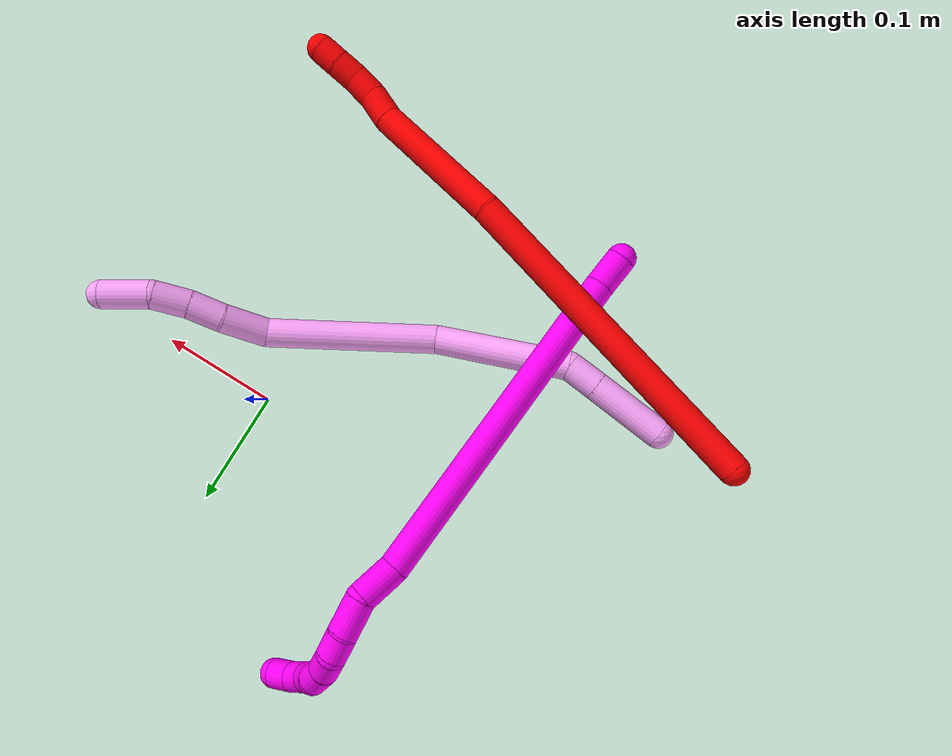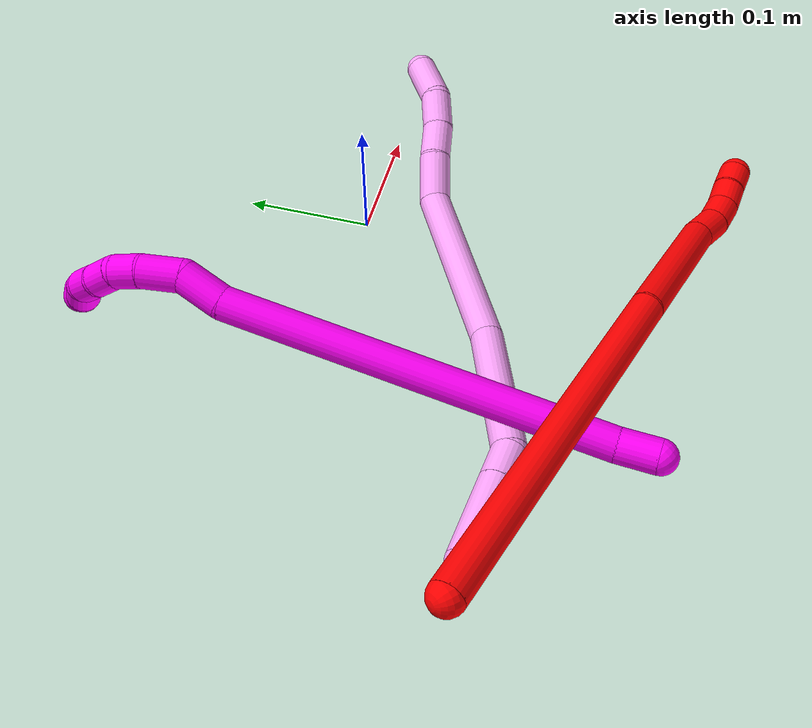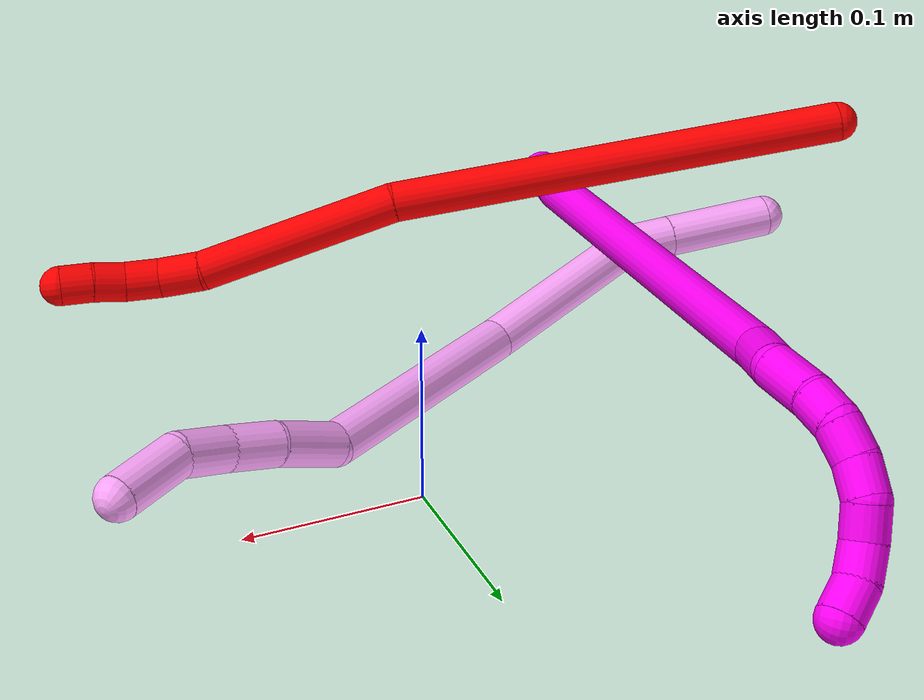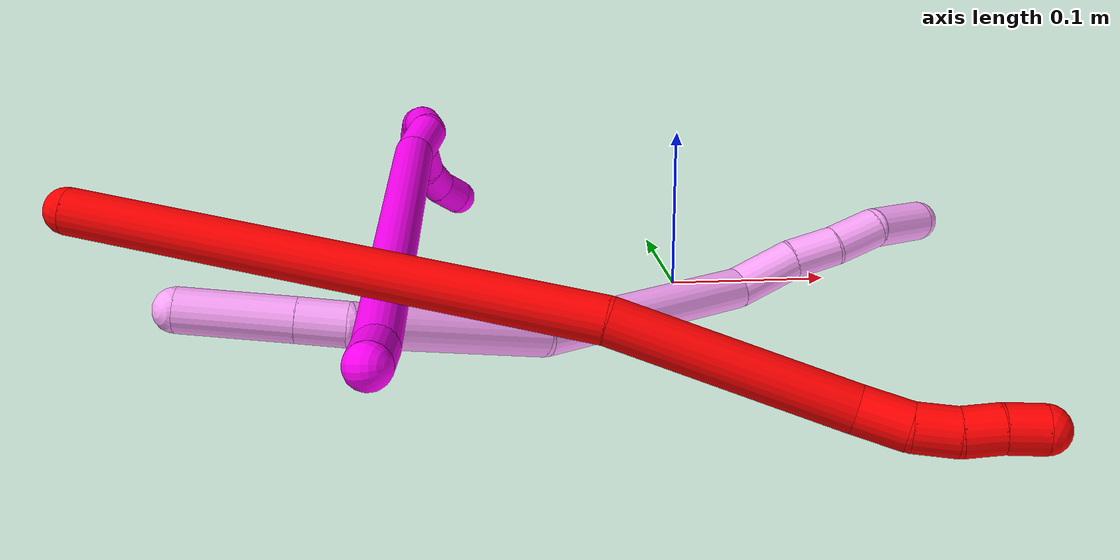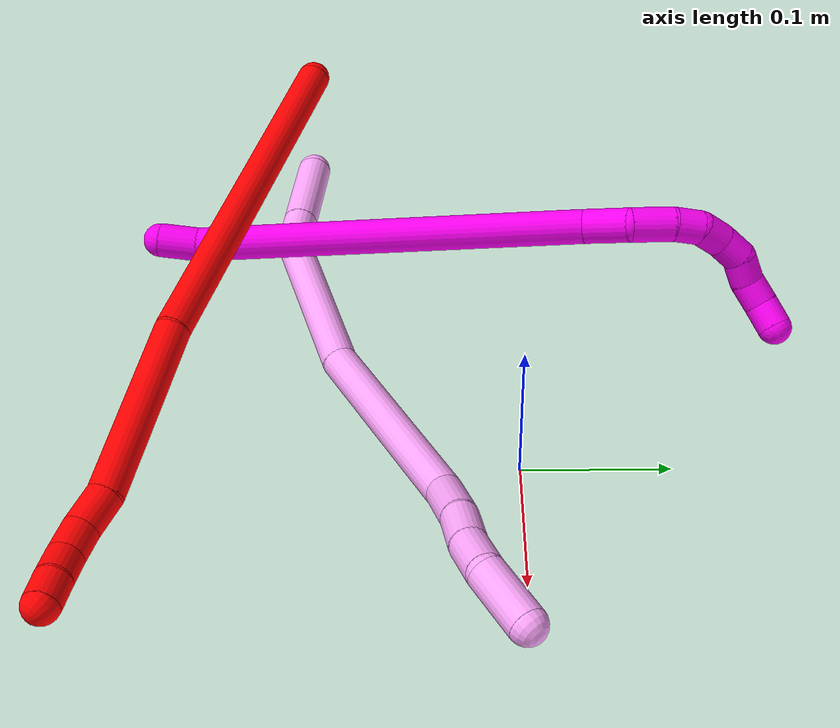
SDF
<sdf version="1.7">
 <world name="default">
  <model name="2">
   <static>0</static>
   <link name="2">
    <collision name="collision-cylinder-e_1_1_4">
     <pose>0.047512 -0.018304 0.132244 0.137534 0.341905 0.02378</pose>
     <geometry><cylinder><radius>0.0125</radius><length>0.283414</length></cylinder></geometry>
     <surface>
      <friction><ode><mu>1.16</mu><mu2>1.16</mu2><slip1>0</slip1><slip2>0</slip2></ode></friction>
      <contact><ode><kp>1e+06</kp><kd>1</kd><max_vel>0</max_vel><min_depth>0.001</min_depth></ode></contact>
     </surface>
    </collision>
    <visual name="visual-cylinder-e_1_1_4">
     <pose>0.047512 -0.018304 0.132244 0.137534 0.341905 0.02378</pose>
     <geometry><cylinder><radius>0.0125</radius><length>0.283414</length></cylinder></geometry>
     <material><ambient>1 0 0 1</ambient></material>
    </visual>
    <collision name="collision-cylinder-e_2_4_5">
     <pose>0.111632 -0.054379 0.323052 0.294628 0.264987 0.039548</pose>
     <geometry><cylinder><radius>0.0125</radius><length>0.12683</length></cylinder></geometry>
     <surface>
      <friction><ode><mu>1.16</mu><mu2>1.16</mu2><slip1>0</slip1><slip2>0</slip2></ode></friction>
      <contact><ode><kp>1e+06</kp><kd>1</kd><max_vel>0</max_vel><min_depth>0.001</min_depth></ode></contact>
     </surface>
    </collision>
    <visual name="visual-cylinder-e_2_4_5">
     <pose>0.111632 -0.054379 0.323052 0.294628 0.264987 0.039548</pose>
     <geometry><cylinder><radius>0.0125</radius><length>0.12683</length></cylinder></geometry>
     <material><ambient>1 0 0 1</ambient></material>
    </visual>
    <collision name="collision-cylinder-e_3_5_6">
     <pose>0.130621 -0.073348 0.394828 0.090384 0.17756 0.008051</pose>
     <geometry><cylinder><radius>0.0125</radius><length>0.026955</length></cylinder></geometry>
     <surface>
      <friction><ode><mu>1.16</mu><mu2>1.16</mu2><slip1>0</slip1><slip2>0</slip2></ode></friction>
      <contact><ode><kp>1e+06</kp><kd>1</kd><max_vel>0</max_vel><min_depth>0.001</min_depth></ode></contact>
     </surface>
    </collision>
    <visual name="visual-cylinder-e_3_5_6">
     <pose>0.130621 -0.073348 0.394828 0.090384 0.17756 0.008051</pose>
     <geometry><cylinder><radius>0.0125</radius><length>0.026955</length></cylinder></geometry>
     <material><ambient>1 0 0 1</ambient></material>
    </visual>
    <collision name="collision-cylinder-e_4_6_7">
     <pose>0.137614 -0.075338 0.41829 0.077135 0.421728 0.016518</pose>
     <geometry><cylinder><radius>0.0125</radius><length>0.022537</length></cylinder></geometry>
     <surface>
      <friction><ode><mu>1.16</mu><mu2>1.16</mu2><slip1>0</slip1><slip2>0</slip2></ode></friction>
      <contact><ode><kp>1e+06</kp><kd>1</kd><max_vel>0</max_vel><min_depth>0.001</min_depth></ode></contact>
     </surface>
    </collision>
    <visual name="visual-cylinder-e_4_6_7">
     <pose>0.137614 -0.075338 0.41829 0.077135 0.421728 0.016518</pose>
     <geometry><cylinder><radius>0.0125</radius><length>0.022537</length></cylinder></geometry>
     <material><ambient>1 0 0 1</ambient></material>
    </visual>
    <collision name="collision-cylinder-e_5_7_8">
     <pose>0.148107 -0.076154 0.436714 0.002949 0.623745 0.000951</pose>
     <geometry><cylinder><radius>0.0125</radius><length>0.020137</length></cylinder></geometry>
     <surface>
      <friction><ode><mu>1.16</mu><mu2>1.16</mu2><slip1>0</slip1><slip2>0</slip2></ode></friction>
      <contact><ode><kp>1e+06</kp><kd>1</kd><max_vel>0</max_vel><min_depth>0.001</min_depth></ode></contact>
     </surface>
    </collision>
    <visual name="visual-cylinder-e_5_7_8">
     <pose>0.148107 -0.076154 0.436714 0.002949 0.623745 0.000951</pose>
     <geometry><cylinder><radius>0.0125</radius><length>0.020137</length></cylinder></geometry>
     <material><ambient>1 0 0 1</ambient></material>
    </visual>
    <collision name="collision-cylinder-e_6_8_2">
     <pose>0.159082 -0.077017 0.453525 0.096804 0.530702 0.026326</pose>
     <geometry><cylinder><radius>0.0125</radius><length>0.020127</length></cylinder></geometry>
     <surface>
      <friction><ode><mu>1.16</mu><mu2>1.16</mu2><slip1>0</slip1><slip2>0</slip2></ode></friction>
      <contact><ode><kp>1e+06</kp><kd>1</kd><max_vel>0</max_vel><min_depth>0.001</min_depth></ode></contact>
     </surface>
    </collision>
    <visual name="visual-cylinder-e_6_8_2">
     <pose>0.159082 -0.077017 0.453525 0.096804 0.530702 0.026326</pose>
     <geometry><cylinder><radius>0.0125</radius><length>0.020127</length></cylinder></geometry>
     <material><ambient>1 0 0 1</ambient></material>
    </visual>
    <collision name="collision-sphere-2">
     <pose>0.164175 -0.077856 0.462163 0 -0 0</pose>
     <geometry><sphere><radius>0.0125</radius></sphere></geometry>
     <surface>
      <friction><ode><mu>1.16</mu><mu2>1.16</mu2><slip1>0</slip1><slip2>0</slip2></ode></friction>
      <contact><ode><kp>1e+06</kp><kd>1</kd><max_vel>0</max_vel><min_depth>0.001</min_depth></ode></contact>
     </surface>
    </collision>
    <visual name="visual-sphere-2">
     <pose>0.164175 -0.077856 0.462163 0 -0 0</pose>
     <geometry><sphere><radius>0.0125</radius></sphere></geometry>
     <material><ambient>1 0 0 1</ambient></material>
    </visual>
    <collision name="collision-sphere-4">
     <pose>0.095024 -0.036607 0.264488 0 -0 0</pose>
     <geometry><sphere><radius>0.0125</radius></sphere></geometry>
     <surface>
      <friction><ode><mu>1.16</mu><mu2>1.16</mu2><slip1>0</slip1><slip2>0</slip2></ode></friction>
      <contact><ode><kp>1e+06</kp><kd>1</kd><max_vel>0</max_vel><min_depth>0.001</min_depth></ode></contact>
     </surface>
    </collision>
    <visual name="visual-sphere-4">
     <pose>0.095024 -0.036607 0.264488 0 -0 0</pose>
     <geometry><sphere><radius>0.0125</radius></sphere></geometry>
     <material><ambient>1 0 0 1</ambient></material>
    </visual>
    <collision name="collision-sphere-1">
     <geometry><sphere><radius>0.0125</radius></sphere></geometry>
     <surface>
      <friction><ode><mu>1.16</mu><mu2>1.16</mu2><slip1>0</slip1><slip2>0</slip2></ode></friction>
      <contact><ode><kp>1e+06</kp><kd>1</kd><max_vel>0</max_vel><min_depth>0.001</min_depth></ode></contact>
     </surface>
    </collision>
    <visual name="visual-sphere-1">
     <geometry><sphere><radius>0.0125</radius></sphere></geometry>
     <material><ambient>1 0 0 1</ambient></material>
    </visual>
    <collision name="collision-sphere-8">
     <pose>0.153988 -0.076179 0.444886 0 -0 0</pose>
     <geometry><sphere><radius>0.0125</radius></sphere></geometry>
     <surface>
      <friction><ode><mu>1.16</mu><mu2>1.16</mu2><slip1>0</slip1><slip2>0</slip2></ode></friction>
      <contact><ode><kp>1e+06</kp><kd>1</kd><max_vel>0</max_vel><min_depth>0.001</min_depth></ode></contact>
     </surface>
    </collision>
    <visual name="visual-sphere-8">
     <pose>0.153988 -0.076179 0.444886 0 -0 0</pose>
     <geometry><sphere><radius>0.0125</radius></sphere></geometry>
     <material><ambient>1 0 0 1</ambient></material>
    </visual>
    <collision name="collision-sphere-5">
     <pose>0.12824 -0.072151 0.381617 0 -0 0</pose>
     <geometry><sphere><radius>0.0125</radius></sphere></geometry>
     <surface>
      <friction><ode><mu>1.16</mu><mu2>1.16</mu2><slip1>0</slip1><slip2>0</slip2></ode></friction>
      <contact><ode><kp>1e+06</kp><kd>1</kd><max_vel>0</max_vel><min_depth>0.001</min_depth></ode></contact>
     </surface>
    </collision>
    <visual name="visual-sphere-5">
     <pose>0.12824 -0.072151 0.381617 0 -0 0</pose>
     <geometry><sphere><radius>0.0125</radius></sphere></geometry>
     <material><ambient>1 0 0 1</ambient></material>
    </visual>
    <collision name="collision-sphere-6">
     <pose>0.133001 -0.074546 0.40804 0 -0 0</pose>
     <geometry><sphere><radius>0.0125</radius></sphere></geometry>
     <surface>
      <friction><ode><mu>1.16</mu><mu2>1.16</mu2><slip1>0</slip1><slip2>0</slip2></ode></friction>
      <contact><ode><kp>1e+06</kp><kd>1</kd><max_vel>0</max_vel><min_depth>0.001</min_depth></ode></contact>
     </surface>
    </collision>
    <visual name="visual-sphere-6">
     <pose>0.133001 -0.074546 0.40804 0 -0 0</pose>
     <geometry><sphere><radius>0.0125</radius></sphere></geometry>
     <material><ambient>1 0 0 1</ambient></material>
    </visual>
    <collision name="collision-sphere-7">
     <pose>0.142226 -0.07613 0.428541 0 -0 0</pose>
     <geometry><sphere><radius>0.0125</radius></sphere></geometry>
     <surface>
      <friction><ode><mu>1.16</mu><mu2>1.16</mu2><slip1>0</slip1><slip2>0</slip2></ode></friction>
      <contact><ode><kp>1e+06</kp><kd>1</kd><max_vel>0</max_vel><min_depth>0.001</min_depth></ode></contact>
     </surface>
    </collision>
    <visual name="visual-sphere-7">
     <pose>0.142226 -0.07613 0.428541 0 -0 0</pose>
     <geometry><sphere><radius>0.0125</radius></sphere></geometry>
     <material><ambient>1 0 0 1</ambient></material>
    </visual>
    <inertial>
     <pose>0.080861 -0.037686 0.232889 0 -0 0</pose>
     <mass>0.5</mass>
     <inertia>
      <ixx>0.002035</ixx>
      <ixy>0</ixy>
      <ixz>0</ixz>
      <iyy>0.00211</iyy>
      <iyz>0</iyz>
      <izz>-0.000356</izz>
     </inertia>
    </inertial>
   </link>
   <pose>-0.346722 -0.152256 0.098874 1.84388 -0.55205 0.767841</pose>
  </model>
  <model name="4">
   <static>0</static>
   <link name="4">
    <collision name="collision-cylinder-e_1_1_4">
     <pose>0.022676 -0.002995 -0.022257 3.00781 0.790233 2.82306</pose>
     <geometry><cylinder><radius>0.0125</radius><length>0.063828</length></cylinder></geometry>
     <surface>
      <friction><ode><mu>1.16</mu><mu2>1.16</mu2><slip1>0</slip1><slip2>0</slip2></ode></friction>
      <contact><ode><kp>1e+06</kp><kd>1</kd><max_vel>0</max_vel><min_depth>0.001</min_depth></ode></contact>
     </surface>
    </collision>
    <visual name="visual-cylinder-e_1_1_4">
     <pose>0.022676 -0.002995 -0.022257 3.00781 0.790233 2.82306</pose>
     <geometry><cylinder><radius>0.0125</radius><length>0.063828</length></cylinder></geometry>
     <material><ambient>1 0.65098 0.996078 1</ambient></material>
    </visual>
    <collision name="collision-cylinder-e_2_4_5">
     <pose>0.055083 -0.007376 -0.054163 2.99904 0.784554 2.79981</pose>
     <geometry><cylinder><radius>0.0125</radius><length>0.02755</length></cylinder></geometry>
     <surface>
      <friction><ode><mu>1.16</mu><mu2>1.16</mu2><slip1>0</slip1><slip2>0</slip2></ode></friction>
      <contact><ode><kp>1e+06</kp><kd>1</kd><max_vel>0</max_vel><min_depth>0.001</min_depth></ode></contact>
     </surface>
    </collision>
    <visual name="visual-cylinder-e_2_4_5">
     <pose>0.055083 -0.007376 -0.054163 2.99904 0.784554 2.79981</pose>
     <geometry><cylinder><radius>0.0125</radius><length>0.02755</length></cylinder></geometry>
     <material><ambient>1 0.65098 0.996078 1</ambient></material>
    </visual>
    <collision name="collision-cylinder-e_3_5_6">
     <pose>0.08338 -0.014586 -0.118859 3.03617 0.323585 2.51628</pose>
     <geometry><cylinder><radius>0.0125</radius><length>0.116766</length></cylinder></geometry>
     <surface>
      <friction><ode><mu>1.16</mu><mu2>1.16</mu2><slip1>0</slip1><slip2>0</slip2></ode></friction>
      <contact><ode><kp>1e+06</kp><kd>1</kd><max_vel>0</max_vel><min_depth>0.001</min_depth></ode></contact>
     </surface>
    </collision>
    <visual name="visual-cylinder-e_3_5_6">
     <pose>0.08338 -0.014586 -0.118859 3.03617 0.323585 2.51628</pose>
     <geometry><cylinder><radius>0.0125</radius><length>0.116766</length></cylinder></geometry>
     <material><ambient>1 0.65098 0.996078 1</ambient></material>
    </visual>
    <collision name="collision-cylinder-e_4_6_7">
     <pose>0.116683 -0.010203 -0.245593 -3.00015 0.200809 -1.9159</pose>
     <geometry><cylinder><radius>0.0125</radius><length>0.147793</length></cylinder></geometry>
     <surface>
      <friction><ode><mu>1.16</mu><mu2>1.16</mu2><slip1>0</slip1><slip2>0</slip2></ode></friction>
      <contact><ode><kp>1e+06</kp><kd>1</kd><max_vel>0</max_vel><min_depth>0.001</min_depth></ode></contact>
     </surface>
    </collision>
    <visual name="visual-cylinder-e_4_6_7">
     <pose>0.116683 -0.010203 -0.245593 -3.00015 0.200809 -1.9159</pose>
     <geometry><cylinder><radius>0.0125</radius><length>0.147793</length></cylinder></geometry>
     <material><ambient>1 0.65098 0.996078 1</ambient></material>
    </visual>
    <collision name="collision-cylinder-e_5_7_8">
     <pose>0.141062 0.008512 -0.332656 -2.63623 0.501783 -1.56338</pose>
     <geometry><cylinder><radius>0.0125</radius><length>0.040083</length></cylinder></geometry>
     <surface>
      <friction><ode><mu>1.16</mu><mu2>1.16</mu2><slip1>0</slip1><slip2>0</slip2></ode></friction>
      <contact><ode><kp>1e+06</kp><kd>1</kd><max_vel>0</max_vel><min_depth>0.001</min_depth></ode></contact>
     </surface>
    </collision>
    <visual name="visual-cylinder-e_5_7_8">
     <pose>0.141062 0.008512 -0.332656 -2.63623 0.501783 -1.56338</pose>
     <geometry><cylinder><radius>0.0125</radius><length>0.040083</length></cylinder></geometry>
     <material><ambient>1 0.65098 0.996078 1</ambient></material>
    </visual>
    <collision name="collision-cylinder-e_6_8_9">
     <pose>0.158857 0.021122 -0.359852 -2.80745 0.57755 -2.10897</pose>
     <geometry><cylinder><radius>0.0125</radius><length>0.029873</length></cylinder></geometry>
     <surface>
      <friction><ode><mu>1.16</mu><mu2>1.16</mu2><slip1>0</slip1><slip2>0</slip2></ode></friction>
      <contact><ode><kp>1e+06</kp><kd>1</kd><max_vel>0</max_vel><min_depth>0.001</min_depth></ode></contact>
     </surface>
    </collision>
    <visual name="visual-cylinder-e_6_8_9">
     <pose>0.158857 0.021122 -0.359852 -2.80745 0.57755 -2.10897</pose>
     <geometry><cylinder><radius>0.0125</radius><length>0.029873</length></cylinder></geometry>
     <material><ambient>1 0.65098 0.996078 1</ambient></material>
    </visual>
    <collision name="collision-cylinder-e_7_9_10">
     <pose>0.173622 0.030732 -0.384585 -2.73853 0.440139 -1.66134</pose>
     <geometry><cylinder><radius>0.0125</radius><length>0.03103</length></cylinder></geometry>
     <surface>
      <friction><ode><mu>1.16</mu><mu2>1.16</mu2><slip1>0</slip1><slip2>0</slip2></ode></friction>
      <contact><ode><kp>1e+06</kp><kd>1</kd><max_vel>0</max_vel><min_depth>0.001</min_depth></ode></contact>
     </surface>
    </collision>
    <visual name="visual-cylinder-e_7_9_10">
     <pose>0.173622 0.030732 -0.384585 -2.73853 0.440139 -1.66134</pose>
     <geometry><cylinder><radius>0.0125</radius><length>0.03103</length></cylinder></geometry>
     <material><ambient>1 0.65098 0.996078 1</ambient></material>
    </visual>
    <collision name="collision-cylinder-e_8_10_2">
     <pose>0.183683 0.038143 -0.418672 -3.05185 0.160876 -2.12518</pose>
     <geometry><cylinder><radius>0.0125</radius><length>0.043076</length></cylinder></geometry>
     <surface>
      <friction><ode><mu>1.16</mu><mu2>1.16</mu2><slip1>0</slip1><slip2>0</slip2></ode></friction>
      <contact><ode><kp>1e+06</kp><kd>1</kd><max_vel>0</max_vel><min_depth>0.001</min_depth></ode></contact>
     </surface>
    </collision>
    <visual name="visual-cylinder-e_8_10_2">
     <pose>0.183683 0.038143 -0.418672 -3.05185 0.160876 -2.12518</pose>
     <geometry><cylinder><radius>0.0125</radius><length>0.043076</length></cylinder></geometry>
     <material><ambient>1 0.65098 0.996078 1</ambient></material>
    </visual>
    <collision name="collision-sphere-2">
     <pose>0.187133 0.040048 -0.439846 0 -0 0</pose>
     <geometry><sphere><radius>0.0125</radius></sphere></geometry>
     <surface>
      <friction><ode><mu>1.16</mu><mu2>1.16</mu2><slip1>0</slip1><slip2>0</slip2></ode></friction>
      <contact><ode><kp>1e+06</kp><kd>1</kd><max_vel>0</max_vel><min_depth>0.001</min_depth></ode></contact>
     </surface>
    </collision>
    <visual name="visual-sphere-2">
     <pose>0.187133 0.040048 -0.439846 0 -0 0</pose>
     <geometry><sphere><radius>0.0125</radius></sphere></geometry>
     <material><ambient>1 0.65098 0.996078 1</ambient></material>
    </visual>
    <collision name="collision-sphere-10">
     <pose>0.180232 0.036237 -0.397497 0 -0 0</pose>
     <geometry><sphere><radius>0.0125</radius></sphere></geometry>
     <surface>
      <friction><ode><mu>1.16</mu><mu2>1.16</mu2><slip1>0</slip1><slip2>0</slip2></ode></friction>
      <contact><ode><kp>1e+06</kp><kd>1</kd><max_vel>0</max_vel><min_depth>0.001</min_depth></ode></contact>
     </surface>
    </collision>
    <visual name="visual-sphere-10">
     <pose>0.180232 0.036237 -0.397497 0 -0 0</pose>
     <geometry><sphere><radius>0.0125</radius></sphere></geometry>
     <material><ambient>1 0.65098 0.996078 1</ambient></material>
    </visual>
    <collision name="collision-sphere-9">
     <pose>0.167011 0.025226 -0.371674 0 -0 0</pose>
     <geometry><sphere><radius>0.0125</radius></sphere></geometry>
     <surface>
      <friction><ode><mu>1.16</mu><mu2>1.16</mu2><slip1>0</slip1><slip2>0</slip2></ode></friction>
      <contact><ode><kp>1e+06</kp><kd>1</kd><max_vel>0</max_vel><min_depth>0.001</min_depth></ode></contact>
     </surface>
    </collision>
    <visual name="visual-sphere-9">
     <pose>0.167011 0.025226 -0.371674 0 -0 0</pose>
     <geometry><sphere><radius>0.0125</radius></sphere></geometry>
     <material><ambient>1 0.65098 0.996078 1</ambient></material>
    </visual>
    <collision name="collision-sphere-4">
     <pose>0.045351 -0.005991 -0.044513 0 -0 0</pose>
     <geometry><sphere><radius>0.0125</radius></sphere></geometry>
     <surface>
      <friction><ode><mu>1.16</mu><mu2>1.16</mu2><slip1>0</slip1><slip2>0</slip2></ode></friction>
      <contact><ode><kp>1e+06</kp><kd>1</kd><max_vel>0</max_vel><min_depth>0.001</min_depth></ode></contact>
     </surface>
    </collision>
    <visual name="visual-sphere-4">
     <pose>0.045351 -0.005991 -0.044513 0 -0 0</pose>
     <geometry><sphere><radius>0.0125</radius></sphere></geometry>
     <material><ambient>1 0.65098 0.996078 1</ambient></material>
    </visual>
    <collision name="collision-sphere-1">
     <geometry><sphere><radius>0.0125</radius></sphere></geometry>
     <surface>
      <friction><ode><mu>1.16</mu><mu2>1.16</mu2><slip1>0</slip1><slip2>0</slip2></ode></friction>
      <contact><ode><kp>1e+06</kp><kd>1</kd><max_vel>0</max_vel><min_depth>0.001</min_depth></ode></contact>
     </surface>
    </collision>
    <visual name="visual-sphere-1">
     <geometry><sphere><radius>0.0125</radius></sphere></geometry>
     <material><ambient>1 0.65098 0.996078 1</ambient></material>
    </visual>
    <collision name="collision-sphere-8">
     <pose>0.150702 0.017018 -0.348031 0 -0 0</pose>
     <geometry><sphere><radius>0.0125</radius></sphere></geometry>
     <surface>
      <friction><ode><mu>1.16</mu><mu2>1.16</mu2><slip1>0</slip1><slip2>0</slip2></ode></friction>
      <contact><ode><kp>1e+06</kp><kd>1</kd><max_vel>0</max_vel><min_depth>0.001</min_depth></ode></contact>
     </surface>
    </collision>
    <visual name="visual-sphere-8">
     <pose>0.150702 0.017018 -0.348031 0 -0 0</pose>
     <geometry><sphere><radius>0.0125</radius></sphere></geometry>
     <material><ambient>1 0.65098 0.996078 1</ambient></material>
    </visual>
    <collision name="collision-sphere-5">
     <pose>0.064816 -0.008761 -0.063813 0 -0 0</pose>
     <geometry><sphere><radius>0.0125</radius></sphere></geometry>
     <surface>
      <friction><ode><mu>1.16</mu><mu2>1.16</mu2><slip1>0</slip1><slip2>0</slip2></ode></friction>
      <contact><ode><kp>1e+06</kp><kd>1</kd><max_vel>0</max_vel><min_depth>0.001</min_depth></ode></contact>
     </surface>
    </collision>
    <visual name="visual-sphere-5">
     <pose>0.064816 -0.008761 -0.063813 0 -0 0</pose>
     <geometry><sphere><radius>0.0125</radius></sphere></geometry>
     <material><ambient>1 0.65098 0.996078 1</ambient></material>
    </visual>
    <collision name="collision-sphere-6">
     <pose>0.101943 -0.020411 -0.173905 0 -0 0</pose>
     <geometry><sphere><radius>0.0125</radius></sphere></geometry>
     <surface>
      <friction><ode><mu>1.16</mu><mu2>1.16</mu2><slip1>0</slip1><slip2>0</slip2></ode></friction>
      <contact><ode><kp>1e+06</kp><kd>1</kd><max_vel>0</max_vel><min_depth>0.001</min_depth></ode></contact>
     </surface>
    </collision>
    <visual name="visual-sphere-6">
     <pose>0.101943 -0.020411 -0.173905 0 -0 0</pose>
     <geometry><sphere><radius>0.0125</radius></sphere></geometry>
     <material><ambient>1 0.65098 0.996078 1</ambient></material>
    </visual>
    <collision name="collision-sphere-7">
     <pose>0.131423 5e-06 -0.317282 0 -0 0</pose>
     <geometry><sphere><radius>0.0125</radius></sphere></geometry>
     <surface>
      <friction><ode><mu>1.16</mu><mu2>1.16</mu2><slip1>0</slip1><slip2>0</slip2></ode></friction>
      <contact><ode><kp>1e+06</kp><kd>1</kd><max_vel>0</max_vel><min_depth>0.001</min_depth></ode></contact>
     </surface>
    </collision>
    <visual name="visual-sphere-7">
     <pose>0.131423 5e-06 -0.317282 0 -0 0</pose>
     <geometry><sphere><radius>0.0125</radius></sphere></geometry>
     <material><ambient>1 0.65098 0.996078 1</ambient></material>
    </visual>
    <inertial>
     <pose>0.107291 -7.3e-05 -0.214281 0 -0 0</pose>
     <mass>0.5</mass>
     <inertia>
      <ixx>-0.000396</ixx>
      <ixy>0</ixy>
      <ixz>0</ixz>
      <iyy>6.1e-05</iyy>
      <iyz>0</iyz>
      <izz>-0.000188</izz>
     </inertia>
    </inertial>
   </link>
   <pose>-0.29622 -0.15162 0.043304 1.39231 -0.180518 -0.849705</pose>
  </model>
  <model name="10">
   <static>0</static>
   <link name="10">
    <collision name="collision-cylinder-e_1_1_4">
     <pose>-0.003069 0.01254 0.006684 -1.08107 -0.212746 0.12799</pose>
     <geometry><cylinder><radius>0.0125</radius><length>0.029075</length></cylinder></geometry>
     <surface>
      <friction><ode><mu>1.16</mu><mu2>1.16</mu2><slip1>0</slip1><slip2>0</slip2></ode></friction>
      <contact><ode><kp>1e+06</kp><kd>1</kd><max_vel>0</max_vel><min_depth>0.001</min_depth></ode></contact>
     </surface>
    </collision>
    <visual name="visual-cylinder-e_1_1_4">
     <pose>-0.003069 0.01254 0.006684 -1.08107 -0.212746 0.12799</pose>
     <geometry><cylinder><radius>0.0125</radius><length>0.029075</length></cylinder></geometry>
     <material><ambient>1 0 0.964706 1</ambient></material>
    </visual>
    <collision name="collision-cylinder-e_2_4_5">
     <pose>-0.010836 0.152082 0.077971 -1.10024 -0.03295 0.020208</pose>
     <geometry><cylinder><radius>0.0125</radius><length>0.285134</length></cylinder></geometry>
     <surface>
      <friction><ode><mu>1.16</mu><mu2>1.16</mu2><slip1>0</slip1><slip2>0</slip2></ode></friction>
      <contact><ode><kp>1e+06</kp><kd>1</kd><max_vel>0</max_vel><min_depth>0.001</min_depth></ode></contact>
     </surface>
    </collision>
    <visual name="visual-cylinder-e_2_4_5">
     <pose>-0.010836 0.152082 0.077971 -1.10024 -0.03295 0.020208</pose>
     <geometry><cylinder><radius>0.0125</radius><length>0.285134</length></cylinder></geometry>
     <material><ambient>1 0 0.964706 1</ambient></material>
    </visual>
    <collision name="collision-cylinder-e_3_5_6">
     <pose>-0.014816 0.295518 0.146371 -1.34369 0.042467 -0.033774</pose>
     <geometry><cylinder><radius>0.0125</radius><length>0.033762</length></cylinder></geometry>
     <surface>
      <friction><ode><mu>1.16</mu><mu2>1.16</mu2><slip1>0</slip1><slip2>0</slip2></ode></friction>
      <contact><ode><kp>1e+06</kp><kd>1</kd><max_vel>0</max_vel><min_depth>0.001</min_depth></ode></contact>
     </surface>
    </collision>
    <visual name="visual-cylinder-e_3_5_6">
     <pose>-0.014816 0.295518 0.146371 -1.34369 0.042467 -0.033774</pose>
     <geometry><cylinder><radius>0.0125</radius><length>0.033762</length></cylinder></geometry>
     <material><ambient>1 0 0.964706 1</ambient></material>
    </visual>
    <collision name="collision-cylinder-e_4_6_7">
     <pose>-0.016193 0.324196 0.15984 -0.902277 -0.133401 0.064701</pose>
     <geometry><cylinder><radius>0.0125</radius><length>0.031488</length></cylinder></geometry>
     <surface>
      <friction><ode><mu>1.16</mu><mu2>1.16</mu2><slip1>0</slip1><slip2>0</slip2></ode></friction>
      <contact><ode><kp>1e+06</kp><kd>1</kd><max_vel>0</max_vel><min_depth>0.001</min_depth></ode></contact>
     </surface>
    </collision>
    <visual name="visual-cylinder-e_4_6_7">
     <pose>-0.016193 0.324196 0.15984 -0.902277 -0.133401 0.064701</pose>
     <geometry><cylinder><radius>0.0125</radius><length>0.031488</length></cylinder></geometry>
     <material><ambient>1 0 0.964706 1</ambient></material>
    </visual>
    <collision name="collision-cylinder-e_5_7_8">
     <pose>-0.02144 0.343646 0.175991 -0.838442 -0.314589 0.141126</pose>
     <geometry><cylinder><radius>0.0125</radius><length>0.020378</length></cylinder></geometry>
     <surface>
      <friction><ode><mu>1.16</mu><mu2>1.16</mu2><slip1>0</slip1><slip2>0</slip2></ode></friction>
      <contact><ode><kp>1e+06</kp><kd>1</kd><max_vel>0</max_vel><min_depth>0.001</min_depth></ode></contact>
     </surface>
    </collision>
    <visual name="visual-cylinder-e_5_7_8">
     <pose>-0.02144 0.343646 0.175991 -0.838442 -0.314589 0.141126</pose>
     <geometry><cylinder><radius>0.0125</radius><length>0.020378</length></cylinder></geometry>
     <material><ambient>1 0 0.964706 1</ambient></material>
    </visual>
    <collision name="collision-cylinder-e_6_8_9">
     <pose>-0.031181 0.355612 0.188379 -0.678094 -0.714918 0.261936</pose>
     <geometry><cylinder><radius>0.0125</radius><length>0.0201</length></cylinder></geometry>
     <surface>
      <friction><ode><mu>1.16</mu><mu2>1.16</mu2><slip1>0</slip1><slip2>0</slip2></ode></friction>
      <contact><ode><kp>1e+06</kp><kd>1</kd><max_vel>0</max_vel><min_depth>0.001</min_depth></ode></contact>
     </surface>
    </collision>
    <visual name="visual-cylinder-e_6_8_9">
     <pose>-0.031181 0.355612 0.188379 -0.678094 -0.714918 0.261936</pose>
     <geometry><cylinder><radius>0.0125</radius><length>0.0201</length></cylinder></geometry>
     <material><ambient>1 0 0.964706 1</ambient></material>
    </visual>
    <collision name="collision-cylinder-e_7_9_10">
     <pose>-0.045355 0.365485 0.198369 -0.897337 -0.859241 0.43418</pose>
     <geometry><cylinder><radius>0.0125</radius><length>0.020033</length></cylinder></geometry>
     <surface>
      <friction><ode><mu>1.16</mu><mu2>1.16</mu2><slip1>0</slip1><slip2>0</slip2></ode></friction>
      <contact><ode><kp>1e+06</kp><kd>1</kd><max_vel>0</max_vel><min_depth>0.001</min_depth></ode></contact>
     </surface>
    </collision>
    <visual name="visual-cylinder-e_7_9_10">
     <pose>-0.045355 0.365485 0.198369 -0.897337 -0.859241 0.43418</pose>
     <geometry><cylinder><radius>0.0125</radius><length>0.020033</length></cylinder></geometry>
     <material><ambient>1 0 0.964706 1</ambient></material>
    </visual>
    <collision name="collision-cylinder-e_8_10_11">
     <pose>-0.062665 0.372404 0.203981 -0.867194 -1.33186 0.697728</pose>
     <geometry><cylinder><radius>0.0125</radius><length>0.020016</length></cylinder></geometry>
     <surface>
      <friction><ode><mu>1.16</mu><mu2>1.16</mu2><slip1>0</slip1><slip2>0</slip2></ode></friction>
      <contact><ode><kp>1e+06</kp><kd>1</kd><max_vel>0</max_vel><min_depth>0.001</min_depth></ode></contact>
     </surface>
    </collision>
    <visual name="visual-cylinder-e_8_10_11">
     <pose>-0.062665 0.372404 0.203981 -0.867194 -1.33186 0.697728</pose>
     <geometry><cylinder><radius>0.0125</radius><length>0.020016</length></cylinder></geometry>
     <material><ambient>1 0 0.964706 1</ambient></material>
    </visual>
    <collision name="collision-cylinder-e_9_11_12">
     <pose>-0.081021 0.379268 0.205625 -1.54864 -1.04073 1.02173</pose>
     <geometry><cylinder><radius>0.0125</radius><length>0.020011</length></cylinder></geometry>
     <surface>
      <friction><ode><mu>1.16</mu><mu2>1.16</mu2><slip1>0</slip1><slip2>0</slip2></ode></friction>
      <contact><ode><kp>1e+06</kp><kd>1</kd><max_vel>0</max_vel><min_depth>0.001</min_depth></ode></contact>
     </surface>
    </collision>
    <visual name="visual-cylinder-e_9_11_12">
     <pose>-0.081021 0.379268 0.205625 -1.54864 -1.04073 1.02173</pose>
     <geometry><cylinder><radius>0.0125</radius><length>0.020011</length></cylinder></geometry>
     <material><ambient>1 0 0.964706 1</ambient></material>
    </visual>
    <collision name="collision-cylinder-e_10_12_2">
     <pose>-0.097152 0.390379 0.203062 -1.98691 -0.847659 1.21155</pose>
     <geometry><cylinder><radius>0.0125</radius><length>0.020003</length></cylinder></geometry>
     <surface>
      <friction><ode><mu>1.16</mu><mu2>1.16</mu2><slip1>0</slip1><slip2>0</slip2></ode></friction>
      <contact><ode><kp>1e+06</kp><kd>1</kd><max_vel>0</max_vel><min_depth>0.001</min_depth></ode></contact>
     </surface>
    </collision>
    <visual name="visual-cylinder-e_10_12_2">
     <pose>-0.097152 0.390379 0.203062 -1.98691 -0.847659 1.21155</pose>
     <geometry><cylinder><radius>0.0125</radius><length>0.020003</length></cylinder></geometry>
     <material><ambient>1 0 0.964706 1</ambient></material>
    </visual>
    <collision name="collision-sphere-2">
     <pose>-0.10465 0.396432 0.200387 0 -0 0</pose>
     <geometry><sphere><radius>0.0125</radius></sphere></geometry>
     <surface>
      <friction><ode><mu>1.16</mu><mu2>1.16</mu2><slip1>0</slip1><slip2>0</slip2></ode></friction>
      <contact><ode><kp>1e+06</kp><kd>1</kd><max_vel>0</max_vel><min_depth>0.001</min_depth></ode></contact>
     </surface>
    </collision>
    <visual name="visual-sphere-2">
     <pose>-0.10465 0.396432 0.200387 0 -0 0</pose>
     <geometry><sphere><radius>0.0125</radius></sphere></geometry>
     <material><ambient>1 0 0.964706 1</ambient></material>
    </visual>
    <collision name="collision-sphere-12">
     <pose>-0.089653 0.384325 0.205737 0 -0 0</pose>
     <geometry><sphere><radius>0.0125</radius></sphere></geometry>
     <surface>
      <friction><ode><mu>1.16</mu><mu2>1.16</mu2><slip1>0</slip1><slip2>0</slip2></ode></friction>
      <contact><ode><kp>1e+06</kp><kd>1</kd><max_vel>0</max_vel><min_depth>0.001</min_depth></ode></contact>
     </surface>
    </collision>
    <visual name="visual-sphere-12">
     <pose>-0.089653 0.384325 0.205737 0 -0 0</pose>
     <geometry><sphere><radius>0.0125</radius></sphere></geometry>
     <material><ambient>1 0 0.964706 1</ambient></material>
    </visual>
    <collision name="collision-sphere-11">
     <pose>-0.072389 0.37421 0.205513 0 -0 0</pose>
     <geometry><sphere><radius>0.0125</radius></sphere></geometry>
     <surface>
      <friction><ode><mu>1.16</mu><mu2>1.16</mu2><slip1>0</slip1><slip2>0</slip2></ode></friction>
      <contact><ode><kp>1e+06</kp><kd>1</kd><max_vel>0</max_vel><min_depth>0.001</min_depth></ode></contact>
     </surface>
    </collision>
    <visual name="visual-sphere-11">
     <pose>-0.072389 0.37421 0.205513 0 -0 0</pose>
     <geometry><sphere><radius>0.0125</radius></sphere></geometry>
     <material><ambient>1 0 0.964706 1</ambient></material>
    </visual>
    <collision name="collision-sphere-10">
     <pose>-0.052941 0.370598 0.202448 0 -0 0</pose>
     <geometry><sphere><radius>0.0125</radius></sphere></geometry>
     <surface>
      <friction><ode><mu>1.16</mu><mu2>1.16</mu2><slip1>0</slip1><slip2>0</slip2></ode></friction>
      <contact><ode><kp>1e+06</kp><kd>1</kd><max_vel>0</max_vel><min_depth>0.001</min_depth></ode></contact>
     </surface>
    </collision>
    <visual name="visual-sphere-10">
     <pose>-0.052941 0.370598 0.202448 0 -0 0</pose>
     <geometry><sphere><radius>0.0125</radius></sphere></geometry>
     <material><ambient>1 0 0.964706 1</ambient></material>
    </visual>
    <collision name="collision-sphere-9">
     <pose>-0.037769 0.360372 0.194289 0 -0 0</pose>
     <geometry><sphere><radius>0.0125</radius></sphere></geometry>
     <surface>
      <friction><ode><mu>1.16</mu><mu2>1.16</mu2><slip1>0</slip1><slip2>0</slip2></ode></friction>
      <contact><ode><kp>1e+06</kp><kd>1</kd><max_vel>0</max_vel><min_depth>0.001</min_depth></ode></contact>
     </surface>
    </collision>
    <visual name="visual-sphere-9">
     <pose>-0.037769 0.360372 0.194289 0 -0 0</pose>
     <geometry><sphere><radius>0.0125</radius></sphere></geometry>
     <material><ambient>1 0 0.964706 1</ambient></material>
    </visual>
    <collision name="collision-sphere-4">
     <pose>-0.006139 0.025079 0.013368 0 -0 0</pose>
     <geometry><sphere><radius>0.0125</radius></sphere></geometry>
     <surface>
      <friction><ode><mu>1.16</mu><mu2>1.16</mu2><slip1>0</slip1><slip2>0</slip2></ode></friction>
      <contact><ode><kp>1e+06</kp><kd>1</kd><max_vel>0</max_vel><min_depth>0.001</min_depth></ode></contact>
     </surface>
    </collision>
    <visual name="visual-sphere-4">
     <pose>-0.006139 0.025079 0.013368 0 -0 0</pose>
     <geometry><sphere><radius>0.0125</radius></sphere></geometry>
     <material><ambient>1 0 0.964706 1</ambient></material>
    </visual>
    <collision name="collision-sphere-1">
     <geometry><sphere><radius>0.0125</radius></sphere></geometry>
     <surface>
      <friction><ode><mu>1.16</mu><mu2>1.16</mu2><slip1>0</slip1><slip2>0</slip2></ode></friction>
      <contact><ode><kp>1e+06</kp><kd>1</kd><max_vel>0</max_vel><min_depth>0.001</min_depth></ode></contact>
     </surface>
    </collision>
    <visual name="visual-sphere-1">
     <geometry><sphere><radius>0.0125</radius></sphere></geometry>
     <material><ambient>1 0 0.964706 1</ambient></material>
    </visual>
    <collision name="collision-sphere-8">
     <pose>-0.024593 0.350851 0.182469 0 -0 0</pose>
     <geometry><sphere><radius>0.0125</radius></sphere></geometry>
     <surface>
      <friction><ode><mu>1.16</mu><mu2>1.16</mu2><slip1>0</slip1><slip2>0</slip2></ode></friction>
      <contact><ode><kp>1e+06</kp><kd>1</kd><max_vel>0</max_vel><min_depth>0.001</min_depth></ode></contact>
     </surface>
    </collision>
    <visual name="visual-sphere-8">
     <pose>-0.024593 0.350851 0.182469 0 -0 0</pose>
     <geometry><sphere><radius>0.0125</radius></sphere></geometry>
     <material><ambient>1 0 0.964706 1</ambient></material>
    </visual>
    <collision name="collision-sphere-5">
     <pose>-0.015532 0.279085 0.142574 0 -0 0</pose>
     <geometry><sphere><radius>0.0125</radius></sphere></geometry>
     <surface>
      <friction><ode><mu>1.16</mu><mu2>1.16</mu2><slip1>0</slip1><slip2>0</slip2></ode></friction>
      <contact><ode><kp>1e+06</kp><kd>1</kd><max_vel>0</max_vel><min_depth>0.001</min_depth></ode></contact>
     </surface>
    </collision>
    <visual name="visual-sphere-5">
     <pose>-0.015532 0.279085 0.142574 0 -0 0</pose>
     <geometry><sphere><radius>0.0125</radius></sphere></geometry>
     <material><ambient>1 0 0.964706 1</ambient></material>
    </visual>
    <collision name="collision-sphere-6">
     <pose>-0.014099 0.311951 0.150169 0 -0 0</pose>
     <geometry><sphere><radius>0.0125</radius></sphere></geometry>
     <surface>
      <friction><ode><mu>1.16</mu><mu2>1.16</mu2><slip1>0</slip1><slip2>0</slip2></ode></friction>
      <contact><ode><kp>1e+06</kp><kd>1</kd><max_vel>0</max_vel><min_depth>0.001</min_depth></ode></contact>
     </surface>
    </collision>
    <visual name="visual-sphere-6">
     <pose>-0.014099 0.311951 0.150169 0 -0 0</pose>
     <geometry><sphere><radius>0.0125</radius></sphere></geometry>
     <material><ambient>1 0 0.964706 1</ambient></material>
    </visual>
    <collision name="collision-sphere-7">
     <pose>-0.018287 0.336441 0.169512 0 -0 0</pose>
     <geometry><sphere><radius>0.0125</radius></sphere></geometry>
     <surface>
      <friction><ode><mu>1.16</mu><mu2>1.16</mu2><slip1>0</slip1><slip2>0</slip2></ode></friction>
      <contact><ode><kp>1e+06</kp><kd>1</kd><max_vel>0</max_vel><min_depth>0.001</min_depth></ode></contact>
     </surface>
    </collision>
    <visual name="visual-sphere-7">
     <pose>-0.018287 0.336441 0.169512 0 -0 0</pose>
     <geometry><sphere><radius>0.0125</radius></sphere></geometry>
     <material><ambient>1 0 0.964706 1</ambient></material>
    </visual>
    <inertial>
     <pose>-0.02196 0.216477 0.112015 0 -0 0</pose>
     <mass>0.5</mass>
     <inertia>
      <ixx>0.001991</ixx>
      <ixy>0</ixy>
      <ixz>0</ixz>
      <iyy>0.000967</iyy>
      <iyz>0</iyz>
      <izz>-0.001658</izz>
     </inertia>
    </inertial>
   </link>
   <pose>-0.194007 -0.259137 0.048943 2.14681 -1.28083 -2.71278</pose>
  </model>
 </world>
</sdf>
